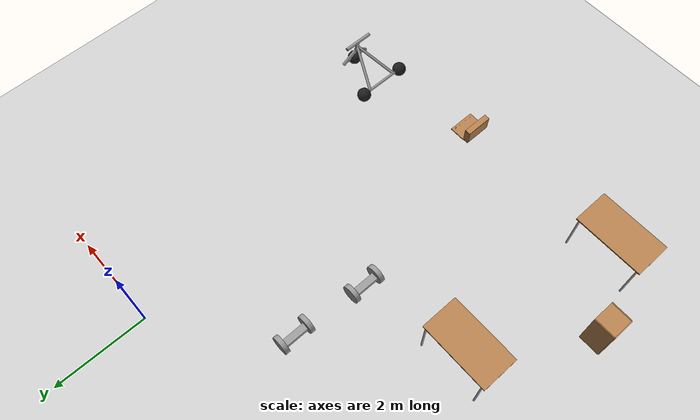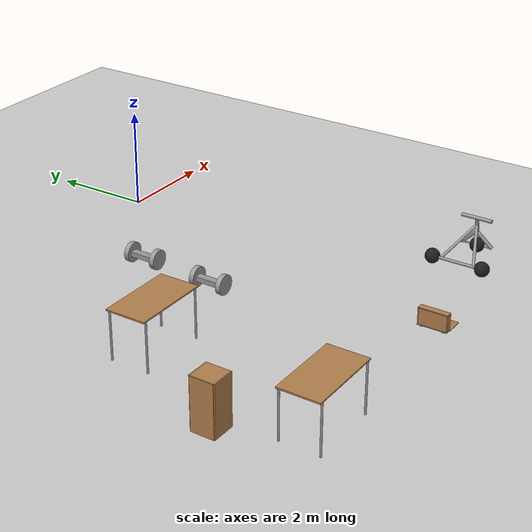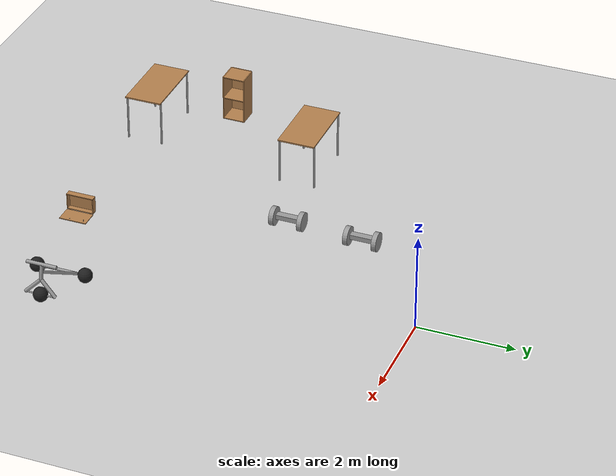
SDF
<sdf version="1.6">
 <world name="default">
  <model name="ground_plane">
   <static>1</static>
   <link name="link">
    <collision name="collision">
     <geometry><plane><normal>0 0 1</normal><size>100 100</size></plane></geometry>
     <surface><friction><ode><mu>100</mu><mu2>50</mu2></ode></friction></surface>
    </collision>
    <visual name="visual">
     <cast_shadows>0</cast_shadows>
     <geometry><plane><normal>0 0 1</normal><size>100 100</size></plane></geometry>
     <material>
      <script><uri>file://media/materials/scripts/gazebo.material</uri><name>Gazebo/Grey</name></script>
     </material>
    </visual>
   </link>
  </model>
  <model name="TwoWheeledRobot">
   <link name="link_0">
    <inertial>
     <mass>1</mass>
     <inertia>
      <ixx>0.166667</ixx>
      <ixy>0</ixy>
      <ixz>0</ixz>
      <iyy>0.166667</iyy>
      <iyz>0</iyz>
      <izz>0.166667</izz>
     </inertia>
     <pose>0 0 0.2 0 -0 0</pose>
    </inertial>
    <pose>-0.021667 0 0 0 -0 0</pose>
    <visual name="visual">
     <geometry><box><size>0.15 0.5 0.1</size></box></geometry>
     <material>
      <lighting>1</lighting>
      <script><uri>file://media/materials/scripts/gazebo.material</uri><name>Gazebo/Grey</name></script>
      <shader type="pixel"><normal_map>__default__</normal_map></shader>
      <ambient>0.3 0.3 0.3 1</ambient>
      <diffuse>0.7 0.7 0.7 1</diffuse>
      <specular>0.01 0.01 0.01 1</specular>
      <emissive>0 0 0 1</emissive>
     </material>
    </visual>
    <collision name="collision">
     <geometry><box><size>0.15 0.5 0.1</size></box></geometry>
     <surface>
      <friction>
       <ode><mu>1</mu><mu2>1</mu2><fdir1>0 0 0</fdir1><slip1>0</slip1><slip2>0</slip2></ode>
       <torsional>
        <coefficient>1</coefficient>
        <patch_radius>0</patch_radius>
        <surface_radius>0</surface_radius>
        <use_patch_radius>1</use_patch_radius>
        <ode><slip>0</slip></ode>
       </torsional>
      </friction>
      <bounce><restitution_coefficient>0</restitution_coefficient><threshold>1e+06</threshold></bounce>
      <contact>
       <collide_without_contact>0</collide_without_contact>
       <collide_without_contact_bitmask>1</collide_without_contact_bitmask>
       <collide_bitmask>1</collide_bitmask>
       <ode>
        <soft_cfm>0</soft_cfm>
        <soft_erp>0.2</soft_erp>
        <kp>1e+13</kp>
        <kd>1</kd>
        <max_vel>0.01</max_vel>
        <min_depth>0</min_depth>
       </ode>
       <bullet>
        <split_impulse>1</split_impulse>
        <split_impulse_penetration_threshold>-0.01</split_impulse_penetration_threshold>
        <soft_cfm>0</soft_cfm>
        <soft_erp>0.2</soft_erp>
        <kp>1e+13</kp>
        <kd>1</kd>
       </bullet>
      </contact>
     </surface>
    </collision>
   </link>
   <link name="link_1">
    <inertial>
     <mass>1</mass>
     <inertia><ixx>0.145833</ixx><ixy>0</ixy><ixz>0</ixz><iyy>0.145833</iyy><iyz>0</iyz><izz>0.125</izz></inertia>
    </inertial>
    <pose>0.010833 -0.300019 0 1.5707 -0 0</pose>
    <visual name="visual">
     <geometry><cylinder><radius>0.2</radius><length>0.1</length></cylinder></geometry>
     <material>
      <lighting>1</lighting>
      <script><uri>file://media/materials/scripts/gazebo.material</uri><name>Gazebo/Grey</name></script>
      <shader type="pixel"><normal_map>__default__</normal_map></shader>
      <ambient>0.3 0.3 0.3 1</ambient>
      <diffuse>0.7 0.7 0.7 1</diffuse>
      <specular>0.01 0.01 0.01 1</specular>
      <emissive>0 0 0 1</emissive>
     </material>
    </visual>
    <collision name="collision">
     <geometry><cylinder><radius>0.2</radius><length>0.1</length></cylinder></geometry>
     <surface>
      <friction>
       <ode><mu>1</mu><mu2>1</mu2><fdir1>0 0 0</fdir1><slip1>0</slip1><slip2>0</slip2></ode>
       <torsional>
        <coefficient>1</coefficient>
        <patch_radius>0</patch_radius>
        <surface_radius>0</surface_radius>
        <use_patch_radius>1</use_patch_radius>
        <ode><slip>0</slip></ode>
       </torsional>
      </friction>
      <bounce><restitution_coefficient>0</restitution_coefficient><threshold>1e+06</threshold></bounce>
      <contact>
       <collide_without_contact>0</collide_without_contact>
       <collide_without_contact_bitmask>1</collide_without_contact_bitmask>
       <collide_bitmask>1</collide_bitmask>
       <ode>
        <soft_cfm>0</soft_cfm>
        <soft_erp>0.2</soft_erp>
        <kp>1e+13</kp>
        <kd>1</kd>
        <max_vel>0.01</max_vel>
        <min_depth>0</min_depth>
       </ode>
       <bullet>
        <split_impulse>1</split_impulse>
        <split_impulse_penetration_threshold>-0.01</split_impulse_penetration_threshold>
        <soft_cfm>0</soft_cfm>
        <soft_erp>0.2</soft_erp>
        <kp>1e+13</kp>
        <kd>1</kd>
       </bullet>
      </contact>
     </surface>
    </collision>
   </link>
   <link name="link_1_clone">
    <inertial>
     <mass>1</mass>
     <inertia><ixx>0.145833</ixx><ixy>0</ixy><ixz>0</ixz><iyy>0.145833</iyy><iyz>0</iyz><izz>0.125</izz></inertia>
    </inertial>
    <pose>0.010833 0.300019 0 1.5707 -0 0</pose>
    <visual name="visual">
     <geometry><cylinder><radius>0.2</radius><length>0.1</length></cylinder></geometry>
     <material>
      <lighting>1</lighting>
      <script><uri>file://media/materials/scripts/gazebo.material</uri><name>Gazebo/Grey</name></script>
      <shader type="pixel"><normal_map>__default__</normal_map></shader>
      <ambient>0.3 0.3 0.3 1</ambient>
      <diffuse>0.7 0.7 0.7 1</diffuse>
      <specular>0.01 0.01 0.01 1</specular>
      <emissive>0 0 0 1</emissive>
     </material>
    </visual>
    <collision name="collision">
     <geometry><cylinder><radius>0.2</radius><length>0.1</length></cylinder></geometry>
     <surface>
      <friction>
       <ode><mu>1</mu><mu2>1</mu2><fdir1>0 0 0</fdir1><slip1>0</slip1><slip2>0</slip2></ode>
       <torsional>
        <coefficient>1</coefficient>
        <patch_radius>0</patch_radius>
        <surface_radius>0</surface_radius>
        <use_patch_radius>1</use_patch_radius>
        <ode><slip>0</slip></ode>
       </torsional>
      </friction>
      <bounce><restitution_coefficient>0</restitution_coefficient><threshold>1e+06</threshold></bounce>
      <contact>
       <collide_without_contact>0</collide_without_contact>
       <collide_without_contact_bitmask>1</collide_without_contact_bitmask>
       <collide_bitmask>1</collide_bitmask>
       <ode>
        <soft_cfm>0</soft_cfm>
        <soft_erp>0.2</soft_erp>
        <kp>1e+13</kp>
        <kd>1</kd>
        <max_vel>0.01</max_vel>
        <min_depth>0</min_depth>
       </ode>
       <bullet>
        <split_impulse>1</split_impulse>
        <split_impulse_penetration_threshold>-0.01</split_impulse_penetration_threshold>
        <soft_cfm>0</soft_cfm>
        <soft_erp>0.2</soft_erp>
        <kp>1e+13</kp>
        <kd>1</kd>
       </bullet>
      </contact>
     </surface>
    </collision>
   </link>
   <joint name="link_0_JOINT_0" type="revolute">
    <parent>link_0</parent>
    <child>link_1</child>
    <axis>
     <xyz>0 0 1</xyz>
     <use_parent_model_frame>0</use_parent_model_frame>
     <limit>
      <lower>-1.79769e+308</lower>
      <upper>1.79769e+308</upper>
      <effort>-1</effort>
      <velocity>-1</velocity>
     </limit>
     <dynamics>
      <spring_reference>0</spring_reference>
      <spring_stiffness>0</spring_stiffness>
      <damping>0</damping>
     </dynamics>
    </axis>
    <physics>
     <ode><limit><cfm>0</cfm><erp>0.2</erp></limit><suspension><cfm>0</cfm><erp>0.2</erp></suspension></ode>
    </physics>
   </joint>
   <joint name="link_0_JOINT_1" type="revolute">
    <parent>link_0</parent>
    <child>link_1_clone</child>
    <axis>
     <xyz>0 0 1</xyz>
     <use_parent_model_frame>0</use_parent_model_frame>
     <limit>
      <lower>-1.79769e+308</lower>
      <upper>1.79769e+308</upper>
      <effort>-1</effort>
      <velocity>-1</velocity>
     </limit>
     <dynamics>
      <spring_reference>0</spring_reference>
      <spring_stiffness>0</spring_stiffness>
      <damping>0</damping>
     </dynamics>
    </axis>
    <physics>
     <ode><limit><cfm>0</cfm><erp>0.2</erp></limit><suspension><cfm>0</cfm><erp>0.2</erp></suspension></ode>
    </physics>
   </joint>
   <static>0</static>
   <pose>-2.17333 -1.88061 0.2 0 -0 0</pose>
  </model>
  <model name="TwoWheeledRobot_0">
   <link name="link_0">
    <inertial>
     <mass>1</mass>
     <inertia>
      <ixx>0.166667</ixx>
      <ixy>0</ixy>
      <ixz>0</ixz>
      <iyy>0.166667</iyy>
      <iyz>0</iyz>
      <izz>0.166667</izz>
     </inertia>
     <pose>0 0 0.2 0 -0 0</pose>
    </inertial>
    <pose>-0.021667 0 0 0 -0 0</pose>
    <visual name="visual">
     <geometry><box><size>0.15 0.5 0.1</size></box></geometry>
     <material>
      <lighting>1</lighting>
      <script><uri>file://media/materials/scripts/gazebo.material</uri><name>Gazebo/Grey</name></script>
      <shader type="pixel"><normal_map>__default__</normal_map></shader>
      <ambient>0.3 0.3 0.3 1</ambient>
      <diffuse>0.7 0.7 0.7 1</diffuse>
      <specular>0.01 0.01 0.01 1</specular>
      <emissive>0 0 0 1</emissive>
     </material>
    </visual>
    <collision name="collision">
     <geometry><box><size>0.15 0.5 0.1</size></box></geometry>
     <surface>
      <friction>
       <ode><mu>1</mu><mu2>1</mu2><fdir1>0 0 0</fdir1><slip1>0</slip1><slip2>0</slip2></ode>
       <torsional>
        <coefficient>1</coefficient>
        <patch_radius>0</patch_radius>
        <surface_radius>0</surface_radius>
        <use_patch_radius>1</use_patch_radius>
        <ode><slip>0</slip></ode>
       </torsional>
      </friction>
      <bounce><restitution_coefficient>0</restitution_coefficient><threshold>1e+06</threshold></bounce>
      <contact>
       <collide_without_contact>0</collide_without_contact>
       <collide_without_contact_bitmask>1</collide_without_contact_bitmask>
       <collide_bitmask>1</collide_bitmask>
       <ode>
        <soft_cfm>0</soft_cfm>
        <soft_erp>0.2</soft_erp>
        <kp>1e+13</kp>
        <kd>1</kd>
        <max_vel>0.01</max_vel>
        <min_depth>0</min_depth>
       </ode>
       <bullet>
        <split_impulse>1</split_impulse>
        <split_impulse_penetration_threshold>-0.01</split_impulse_penetration_threshold>
        <soft_cfm>0</soft_cfm>
        <soft_erp>0.2</soft_erp>
        <kp>1e+13</kp>
        <kd>1</kd>
       </bullet>
      </contact>
     </surface>
    </collision>
   </link>
   <link name="link_1">
    <inertial>
     <mass>1</mass>
     <inertia><ixx>0.145833</ixx><ixy>0</ixy><ixz>0</ixz><iyy>0.145833</iyy><iyz>0</iyz><izz>0.125</izz></inertia>
    </inertial>
    <pose>0.010833 -0.300019 0 1.5707 -0 0</pose>
    <visual name="visual">
     <geometry><cylinder><radius>0.2</radius><length>0.1</length></cylinder></geometry>
     <material>
      <lighting>1</lighting>
      <script><uri>file://media/materials/scripts/gazebo.material</uri><name>Gazebo/Grey</name></script>
      <shader type="pixel"><normal_map>__default__</normal_map></shader>
      <ambient>0.3 0.3 0.3 1</ambient>
      <diffuse>0.7 0.7 0.7 1</diffuse>
      <specular>0.01 0.01 0.01 1</specular>
      <emissive>0 0 0 1</emissive>
     </material>
    </visual>
    <collision name="collision">
     <geometry><cylinder><radius>0.2</radius><length>0.1</length></cylinder></geometry>
     <surface>
      <friction>
       <ode><mu>1</mu><mu2>1</mu2><fdir1>0 0 0</fdir1><slip1>0</slip1><slip2>0</slip2></ode>
       <torsional>
        <coefficient>1</coefficient>
        <patch_radius>0</patch_radius>
        <surface_radius>0</surface_radius>
        <use_patch_radius>1</use_patch_radius>
        <ode><slip>0</slip></ode>
       </torsional>
      </friction>
      <bounce><restitution_coefficient>0</restitution_coefficient><threshold>1e+06</threshold></bounce>
      <contact>
       <collide_without_contact>0</collide_without_contact>
       <collide_without_contact_bitmask>1</collide_without_contact_bitmask>
       <collide_bitmask>1</collide_bitmask>
       <ode>
        <soft_cfm>0</soft_cfm>
        <soft_erp>0.2</soft_erp>
        <kp>1e+13</kp>
        <kd>1</kd>
        <max_vel>0.01</max_vel>
        <min_depth>0</min_depth>
       </ode>
       <bullet>
        <split_impulse>1</split_impulse>
        <split_impulse_penetration_threshold>-0.01</split_impulse_penetration_threshold>
        <soft_cfm>0</soft_cfm>
        <soft_erp>0.2</soft_erp>
        <kp>1e+13</kp>
        <kd>1</kd>
       </bullet>
      </contact>
     </surface>
    </collision>
   </link>
   <link name="link_1_clone">
    <inertial>
     <mass>1</mass>
     <inertia><ixx>0.145833</ixx><ixy>0</ixy><ixz>0</ixz><iyy>0.145833</iyy><iyz>0</iyz><izz>0.125</izz></inertia>
    </inertial>
    <pose>0.010833 0.300019 0 1.5707 -0 0</pose>
    <visual name="visual">
     <geometry><cylinder><radius>0.2</radius><length>0.1</length></cylinder></geometry>
     <material>
      <lighting>1</lighting>
      <script><uri>file://media/materials/scripts/gazebo.material</uri><name>Gazebo/Grey</name></script>
      <shader type="pixel"><normal_map>__default__</normal_map></shader>
      <ambient>0.3 0.3 0.3 1</ambient>
      <diffuse>0.7 0.7 0.7 1</diffuse>
      <specular>0.01 0.01 0.01 1</specular>
      <emissive>0 0 0 1</emissive>
     </material>
    </visual>
    <collision name="collision">
     <geometry><cylinder><radius>0.2</radius><length>0.1</length></cylinder></geometry>
     <surface>
      <friction>
       <ode><mu>1</mu><mu2>1</mu2><fdir1>0 0 0</fdir1><slip1>0</slip1><slip2>0</slip2></ode>
       <torsional>
        <coefficient>1</coefficient>
        <patch_radius>0</patch_radius>
        <surface_radius>0</surface_radius>
        <use_patch_radius>1</use_patch_radius>
        <ode><slip>0</slip></ode>
       </torsional>
      </friction>
      <bounce><restitution_coefficient>0</restitution_coefficient><threshold>1e+06</threshold></bounce>
      <contact>
       <collide_without_contact>0</collide_without_contact>
       <collide_without_contact_bitmask>1</collide_without_contact_bitmask>
       <collide_bitmask>1</collide_bitmask>
       <ode>
        <soft_cfm>0</soft_cfm>
        <soft_erp>0.2</soft_erp>
        <kp>1e+13</kp>
        <kd>1</kd>
        <max_vel>0.01</max_vel>
        <min_depth>0</min_depth>
       </ode>
       <bullet>
        <split_impulse>1</split_impulse>
        <split_impulse_penetration_threshold>-0.01</split_impulse_penetration_threshold>
        <soft_cfm>0</soft_cfm>
        <soft_erp>0.2</soft_erp>
        <kp>1e+13</kp>
        <kd>1</kd>
       </bullet>
      </contact>
     </surface>
    </collision>
   </link>
   <joint name="link_0_JOINT_0" type="revolute">
    <parent>link_0</parent>
    <child>link_1</child>
    <axis>
     <xyz>0 0 1</xyz>
     <use_parent_model_frame>0</use_parent_model_frame>
     <limit>
      <lower>-1.79769e+308</lower>
      <upper>1.79769e+308</upper>
      <effort>-1</effort>
      <velocity>-1</velocity>
     </limit>
     <dynamics>
      <spring_reference>0</spring_reference>
      <spring_stiffness>0</spring_stiffness>
      <damping>0</damping>
     </dynamics>
    </axis>
    <physics>
     <ode><limit><cfm>0</cfm><erp>0.2</erp></limit><suspension><cfm>0</cfm><erp>0.2</erp></suspension></ode>
    </physics>
   </joint>
   <joint name="link_0_JOINT_1" type="revolute">
    <parent>link_0</parent>
    <child>link_1_clone</child>
    <axis>
     <xyz>0 0 1</xyz>
     <use_parent_model_frame>0</use_parent_model_frame>
     <limit>
      <lower>-1.79769e+308</lower>
      <upper>1.79769e+308</upper>
      <effort>-1</effort>
      <velocity>-1</velocity>
     </limit>
     <dynamics>
      <spring_reference>0</spring_reference>
      <spring_stiffness>0</spring_stiffness>
      <damping>0</damping>
     </dynamics>
    </axis>
    <physics>
     <ode><limit><cfm>0</cfm><erp>0.2</erp></limit><suspension><cfm>0</cfm><erp>0.2</erp></suspension></ode>
    </physics>
   </joint>
   <static>0</static>
   <pose>-2.29318 -3.50931 0.2 0 -0 0</pose>
  </model>
  <model name="cabinet">
   <static>1</static>
   <link name="cabinet_bottom_plate">
    <inertial>
     <pose>0 0 -1 0 -0 0</pose>
     <inertia><ixx>2.05</ixx><ixy>0</ixy><ixz>0</ixz><iyy>2.05</iyy><iyz>0</iyz><izz>2.05</izz></inertia>
     <mass>25</mass>
    </inertial>
    <collision name="cabinet_bottom_plate_geom">
     <pose>0 0 0.01 0 -0 0</pose>
     <geometry><box><size>0.45 0.45 0.02</size></box></geometry>
    </collision>
    <visual name="cabinet_bottom_plate_geom_visual">
     <pose>0 0 0.01 0 -0 0</pose>
     <geometry><box><size>0.45 0.45 0.02</size></box></geometry>
     <material>
      <script><uri>file://media/materials/scripts/gazebo.material</uri><name>Gazebo/Wood</name></script>
     </material>
    </visual>
    <collision name="cabinet_bottom_plate_geom_cabinet_back_plate">
     <pose>0.235 0 0.51 0 -0 0</pose>
     <geometry><box><size>0.02 0.45 1.02</size></box></geometry>
    </collision>
    <visual name="cabinet_bottom_plate_geom_cabinet_back_plate_visual">
     <pose>0.235 0 0.51 0 -0 0</pose>
     <geometry><box><size>0.02 0.45 1.02</size></box></geometry>
     <material>
      <script><uri>file://media/materials/scripts/gazebo.material</uri><name>Gazebo/Wood</name></script>
     </material>
    </visual>
    <collision name="cabinet_bottom_plate_geom_cabinet_left_plate">
     <pose>0 0.235 0.51 0 -0 0</pose>
     <geometry><box><size>0.45 0.02 1.02</size></box></geometry>
    </collision>
    <visual name="cabinet_bottom_plate_geom_cabinet_left_plate_visual">
     <pose>0 0.235 0.51 0 -0 0</pose>
     <geometry><box><size>0.45 0.02 1.02</size></box></geometry>
     <material>
      <script><uri>file://media/materials/scripts/gazebo.material</uri><name>Gazebo/Wood</name></script>
     </material>
    </visual>
    <collision name="cabinet_bottom_plate_geom_cabinet_middle_plate">
     <pose>0 0 0.51 0 -0 0</pose>
     <geometry><box><size>0.45 0.45 0.02</size></box></geometry>
    </collision>
    <visual name="cabinet_bottom_plate_geom_cabinet_middle_plate_visual">
     <pose>0 0 0.51 0 -0 0</pose>
     <geometry><box><size>0.45 0.45 0.02</size></box></geometry>
     <material>
      <script><uri>file://media/materials/scripts/gazebo.material</uri><name>Gazebo/Wood</name></script>
     </material>
    </visual>
    <collision name="cabinet_bottom_plate_geom_cabinet_right_plate">
     <pose>0 -0.235 0.51 0 -0 0</pose>
     <geometry><box><size>0.45 0.02 1.02</size></box></geometry>
    </collision>
    <visual name="cabinet_bottom_plate_geom_cabinet_right_plate_visual">
     <pose>0 -0.235 0.51 0 -0 0</pose>
     <geometry><box><size>0.45 0.02 1.02</size></box></geometry>
     <material>
      <script><uri>file://media/materials/scripts/gazebo.material</uri><name>Gazebo/Wood</name></script>
     </material>
    </visual>
    <collision name="cabinet_bottom_plate_geom_cabinet_top_plate">
     <pose>0 0 1.01 0 -0 0</pose>
     <geometry><box><size>0.45 0.45 0.02</size></box></geometry>
    </collision>
    <visual name="cabinet_bottom_plate_geom_cabinet_top_plate_visual">
     <pose>0 0 1.01 0 -0 0</pose>
     <geometry><box><size>0.45 0.45 0.02</size></box></geometry>
     <material>
      <script><uri>file://media/materials/scripts/gazebo.material</uri><name>Gazebo/Wood</name></script>
     </material>
    </visual>
   </link>
   <pose>-5.90656 -6.11318 0 0 -0 3.1347</pose>
  </model>
  <model name="table">
   <static>1</static>
   <link name="link">
    <collision name="surface">
     <pose>0 0 1 0 -0 0</pose>
     <geometry><box><size>1.5 0.8 0.03</size></box></geometry>
     <surface><friction><ode><mu>0.6</mu><mu2>0.6</mu2></ode></friction></surface>
    </collision>
    <visual name="visual1">
     <pose>0 0 1 0 -0 0</pose>
     <geometry><box><size>1.5 0.8 0.03</size></box></geometry>
     <material>
      <script><uri>file://media/materials/scripts/gazebo.material</uri><name>Gazebo/Wood</name></script>
     </material>
    </visual>
    <collision name="front_left_leg">
     <pose>0.68 0.38 0.5 0 -0 0</pose>
     <geometry><cylinder><radius>0.02</radius><length>1</length></cylinder></geometry>
    </collision>
    <visual name="front_left_leg">
     <pose>0.68 0.38 0.5 0 -0 0</pose>
     <geometry><cylinder><radius>0.02</radius><length>1</length></cylinder></geometry>
     <material>
      <script><uri>file://media/materials/scripts/gazebo.material</uri><name>Gazebo/Grey</name></script>
     </material>
    </visual>
    <collision name="front_right_leg">
     <pose>0.68 -0.38 0.5 0 -0 0</pose>
     <geometry><cylinder><radius>0.02</radius><length>1</length></cylinder></geometry>
    </collision>
    <visual name="front_right_leg">
     <pose>0.68 -0.38 0.5 0 -0 0</pose>
     <geometry><cylinder><radius>0.02</radius><length>1</length></cylinder></geometry>
     <material>
      <script><uri>file://media/materials/scripts/gazebo.material</uri><name>Gazebo/Grey</name></script>
     </material>
    </visual>
    <collision name="back_right_leg">
     <pose>-0.68 -0.38 0.5 0 -0 0</pose>
     <geometry><cylinder><radius>0.02</radius><length>1</length></cylinder></geometry>
    </collision>
    <visual name="back_right_leg">
     <pose>-0.68 -0.38 0.5 0 -0 0</pose>
     <geometry><cylinder><radius>0.02</radius><length>1</length></cylinder></geometry>
     <material>
      <script><uri>file://media/materials/scripts/gazebo.material</uri><name>Gazebo/Grey</name></script>
     </material>
    </visual>
    <collision name="back_left_leg">
     <pose>-0.68 0.38 0.5 0 -0 0</pose>
     <geometry><cylinder><radius>0.02</radius><length>1</length></cylinder></geometry>
    </collision>
    <visual name="back_left_leg">
     <pose>-0.68 0.38 0.5 0 -0 0</pose>
     <geometry><cylinder><radius>0.02</radius><length>1</length></cylinder></geometry>
     <material>
      <script><uri>file://media/materials/scripts/gazebo.material</uri><name>Gazebo/Grey</name></script>
     </material>
    </visual>
   </link>
   <pose>-4.51992 -3.93494 0 0 -0 0</pose>
  </model>
  <model name="table_0">
   <static>1</static>
   <link name="link">
    <collision name="surface">
     <pose>0 0 1 0 -0 0</pose>
     <geometry><box><size>1.5 0.8 0.03</size></box></geometry>
     <surface><friction><ode><mu>0.6</mu><mu2>0.6</mu2></ode></friction></surface>
    </collision>
    <visual name="visual1">
     <pose>0 0 1 0 -0 0</pose>
     <geometry><box><size>1.5 0.8 0.03</size></box></geometry>
     <material>
      <script><uri>file://media/materials/scripts/gazebo.material</uri><name>Gazebo/Wood</name></script>
     </material>
    </visual>
    <collision name="front_left_leg">
     <pose>0.68 0.38 0.5 0 -0 0</pose>
     <geometry><cylinder><radius>0.02</radius><length>1</length></cylinder></geometry>
    </collision>
    <visual name="front_left_leg">
     <pose>0.68 0.38 0.5 0 -0 0</pose>
     <geometry><cylinder><radius>0.02</radius><length>1</length></cylinder></geometry>
     <material>
      <script><uri>file://media/materials/scripts/gazebo.material</uri><name>Gazebo/Grey</name></script>
     </material>
    </visual>
    <collision name="front_right_leg">
     <pose>0.68 -0.38 0.5 0 -0 0</pose>
     <geometry><cylinder><radius>0.02</radius><length>1</length></cylinder></geometry>
    </collision>
    <visual name="front_right_leg">
     <pose>0.68 -0.38 0.5 0 -0 0</pose>
     <geometry><cylinder><radius>0.02</radius><length>1</length></cylinder></geometry>
     <material>
      <script><uri>file://media/materials/scripts/gazebo.material</uri><name>Gazebo/Grey</name></script>
     </material>
    </visual>
    <collision name="back_right_leg">
     <pose>-0.68 -0.38 0.5 0 -0 0</pose>
     <geometry><cylinder><radius>0.02</radius><length>1</length></cylinder></geometry>
    </collision>
    <visual name="back_right_leg">
     <pose>-0.68 -0.38 0.5 0 -0 0</pose>
     <geometry><cylinder><radius>0.02</radius><length>1</length></cylinder></geometry>
     <material>
      <script><uri>file://media/materials/scripts/gazebo.material</uri><name>Gazebo/Grey</name></script>
     </material>
    </visual>
    <collision name="back_left_leg">
     <pose>-0.68 0.38 0.5 0 -0 0</pose>
     <geometry><cylinder><radius>0.02</radius><length>1</length></cylinder></geometry>
    </collision>
    <visual name="back_left_leg">
     <pose>-0.68 0.38 0.5 0 -0 0</pose>
     <geometry><cylinder><radius>0.02</radius><length>1</length></cylinder></geometry>
     <material>
      <script><uri>file://media/materials/scripts/gazebo.material</uri><name>Gazebo/Grey</name></script>
     </material>
    </visual>
   </link>
   <pose>-4.92469 -7.5358 0 0 -0 0</pose>
  </model>
  <model name="trisphere_cycle">
   <link name="frame">
    <pose>-0.408559 0 0.385023 0 -0.522021 0</pose>
    <inertial>
     <mass>10</mass>
     <inertia><ixx>0.228</ixx><iyy>0.743521</iyy><izz>0.965521</izz><ixy>0</ixy><ixz>0</ixz><iyz>0</iyz></inertia>
    </inertial>
    <collision name="axle_collision">
     <pose>-0.471335 0 0 1.5708 -0 0</pose>
     <geometry><cylinder><length>1.03923</length><radius>0.03</radius></cylinder></geometry>
    </collision>
    <visual name="axle_visual">
     <pose>-0.471335 0 0 1.5708 -0 0</pose>
     <geometry><cylinder><length>1.03923</length><radius>0.03</radius></cylinder></geometry>
     <material>
      <script><uri>file://media/materials/scripts/gazebo.material</uri><name>Gazebo/Grey</name></script>
     </material>
    </visual>
    <collision name="frame_left_collision">
     <pose>0 0.171552 0 -2.79253 1.57079 3.14159</pose>
     <geometry><cylinder><length>1.00317</length><radius>0.03</radius></cylinder></geometry>
    </collision>
    <visual name="frame_left_visual">
     <pose>0 0.171552 0 -2.79253 1.57079 3.14159</pose>
     <geometry><cylinder><length>1.00317</length><radius>0.03</radius></cylinder></geometry>
     <material>
      <script><uri>file://media/materials/scripts/gazebo.material</uri><name>Gazebo/Grey</name></script>
     </material>
    </visual>
    <collision name="frame_right_collision">
     <pose>0 -0.171552 0 2.79253 1.57079 -3.14159</pose>
     <geometry><cylinder><length>1.00317</length><radius>0.03</radius></cylinder></geometry>
    </collision>
    <visual name="frame_right_visual">
     <pose>0 -0.171552 0 2.79253 1.57079 -3.14159</pose>
     <geometry><cylinder><length>1.00317</length><radius>0.03</radius></cylinder></geometry>
     <material>
      <script><uri>file://media/materials/scripts/gazebo.material</uri><name>Gazebo/Grey</name></script>
     </material>
    </visual>
   </link>
   <link name="fork">
    <pose>0.041441 0 0.385023 0 -0.174533 0</pose>
    <inertial>
     <mass>3</mass>
     <inertia>
      <ixx>0.158203</ixx>
      <iyy>0.0583594</iyy>
      <izz>0.102656</izz>
      <ixy>0</ixy>
      <ixz>0</ixz>
      <iyz>0</iyz>
     </inertia>
    </inertial>
    <collision name="handlebars_collision">
     <pose>0 0 0.397748 1.5708 -0 0</pose>
     <geometry><cylinder><length>0.636396</length><radius>0.0375</radius></cylinder></geometry>
    </collision>
    <visual name="handlebars_visual">
     <pose>0 0 0.397748 1.5708 -0 0</pose>
     <geometry><cylinder><length>0.636396</length><radius>0.0375</radius></cylinder></geometry>
     <material>
      <script><uri>file://media/materials/scripts/gazebo.material</uri><name>Gazebo/Grey</name></script>
     </material>
    </visual>
    <collision name="headtube_collision">
     <pose>0 0 0.238649 0 -0 0</pose>
     <geometry><cylinder><length>0.318198</length><radius>0.0375</radius></cylinder></geometry>
    </collision>
    <visual name="headtube_visual">
     <pose>0 0 0.238649 0 -0 0</pose>
     <geometry><cylinder><length>0.318198</length><radius>0.0375</radius></cylinder></geometry>
     <material>
      <script><uri>file://media/materials/scripts/gazebo.material</uri><name>Gazebo/Grey</name></script>
     </material>
    </visual>
    <collision name="spindle_collision">
     <pose>0 0 -0.238649 1.5708 -0 0</pose>
     <geometry><cylinder><length>0.636396</length><radius>0.015</radius></cylinder></geometry>
    </collision>
    <visual name="spindle_visual">
     <pose>0 0 -0.238649 1.5708 -0 0</pose>
     <geometry><cylinder><length>0.636396</length><radius>0.015</radius></cylinder></geometry>
     <material>
      <script><uri>file://media/materials/scripts/gazebo.material</uri><name>Gazebo/Grey</name></script>
     </material>
    </visual>
    <collision name="fork_left_collision">
     <pose>0 0.159099 -0.07955 0.785398 -0 0</pose>
     <geometry><cylinder><length>0.45</length><radius>0.0375</radius></cylinder></geometry>
    </collision>
    <visual name="fork_left_visual">
     <pose>0 0.159099 -0.07955 0.785398 -0 0</pose>
     <geometry><cylinder><length>0.45</length><radius>0.0375</radius></cylinder></geometry>
     <material>
      <script><uri>file://media/materials/scripts/gazebo.material</uri><name>Gazebo/Grey</name></script>
     </material>
    </visual>
    <collision name="fork_right_collision">
     <pose>0 -0.159099 -0.07955 -0.785398 0 0</pose>
     <geometry><cylinder><length>0.45</length><radius>0.0375</radius></cylinder></geometry>
    </collision>
    <visual name="fork_right_visual">
     <pose>0 -0.159099 -0.07955 -0.785398 0 0</pose>
     <geometry><cylinder><length>0.45</length><radius>0.0375</radius></cylinder></geometry>
     <material>
      <script><uri>file://media/materials/scripts/gazebo.material</uri><name>Gazebo/Grey</name></script>
     </material>
    </visual>
   </link>
   <link name="wheel_front">
    <pose>0.082882 0 0.15 0 -0 0</pose>
    <inertial>
     <mass>0.5</mass>
     <inertia><ixx>0.0045</ixx><iyy>0.0045</iyy><izz>0.0045</izz><ixy>0</ixy><ixz>0</ixz><iyz>0</iyz></inertia>
    </inertial>
    <collision name="collision">
     <geometry><sphere><radius>0.15</radius></sphere></geometry>
     <surface><contact><ode><kp>1e+08</kp><kd>1</kd><min_depth>0.0005</min_depth></ode></contact></surface>
    </collision>
    <visual name="visual">
     <geometry><sphere><radius>0.15</radius></sphere></geometry>
     <material>
      <script><uri>file://media/materials/scripts/gazebo.material</uri><name>Gazebo/Black</name></script>
     </material>
    </visual>
   </link>
   <joint name="wheel_front_steer" type="revolute">
    <parent>frame</parent>
    <child>fork</child>
    <axis>
     <xyz>0 0 1</xyz>
     <limit><lower>-0.959931</lower><upper>0.959931</upper></limit>
     <use_parent_model_frame>0</use_parent_model_frame>
     <dynamics><spring_reference>0</spring_reference><spring_stiffness>0</spring_stiffness></dynamics>
    </axis>
   </joint>
   <joint name="wheel_front_spin" type="revolute">
    <parent>fork</parent>
    <child>wheel_front</child>
    <axis>
     <xyz>0 1 0</xyz>
     <use_parent_model_frame>0</use_parent_model_frame>
     <limit><lower>-1e+16</lower><upper>1e+16</upper></limit>
     <dynamics><spring_reference>0</spring_reference><spring_stiffness>0</spring_stiffness></dynamics>
    </axis>
   </joint>
   <link name="wheel_rear_left">
    <pose>-0.817118 0.519615 0.15 0 -0 0</pose>
    <inertial>
     <mass>0.5</mass>
     <inertia><ixx>0.0045</ixx><iyy>0.0045</iyy><izz>0.0045</izz><ixy>0</ixy><ixz>0</ixz><iyz>0</iyz></inertia>
    </inertial>
    <collision name="collision">
     <geometry><sphere><radius>0.15</radius></sphere></geometry>
     <surface><contact><ode><kp>1e+08</kp><kd>1</kd><min_depth>0.0005</min_depth></ode></contact></surface>
    </collision>
    <visual name="visual">
     <geometry><sphere><radius>0.15</radius></sphere></geometry>
     <material>
      <script><uri>file://media/materials/scripts/gazebo.material</uri><name>Gazebo/Black</name></script>
     </material>
    </visual>
   </link>
   <joint name="wheel_rear_left_spin" type="revolute">
    <parent>frame</parent>
    <child>wheel_rear_left</child>
    <axis>
     <xyz>0 1 0</xyz>
     <use_parent_model_frame>0</use_parent_model_frame>
     <limit><lower>-1e+16</lower><upper>1e+16</upper></limit>
     <dynamics><spring_reference>0</spring_reference><spring_stiffness>0</spring_stiffness></dynamics>
    </axis>
   </joint>
   <link name="wheel_rear_right">
    <pose>-0.817118 -0.519615 0.15 0 -0 0</pose>
    <inertial>
     <mass>0.5</mass>
     <inertia><ixx>0.0045</ixx><iyy>0.0045</iyy><izz>0.0045</izz><ixy>0</ixy><ixz>0</ixz><iyz>0</iyz></inertia>
    </inertial>
    <collision name="collision">
     <geometry><sphere><radius>0.15</radius></sphere></geometry>
     <surface><contact><ode><kp>1e+08</kp><kd>1</kd><min_depth>0.0005</min_depth></ode></contact></surface>
    </collision>
    <visual name="visual">
     <geometry><sphere><radius>0.15</radius></sphere></geometry>
     <material>
      <script><uri>file://media/materials/scripts/gazebo.material</uri><name>Gazebo/Black</name></script>
     </material>
    </visual>
   </link>
   <joint name="wheel_rear_right_spin" type="revolute">
    <parent>frame</parent>
    <child>wheel_rear_right</child>
    <axis>
     <xyz>0 1 0</xyz>
     <use_parent_model_frame>0</use_parent_model_frame>
     <limit><lower>-1e+16</lower><upper>1e+16</upper></limit>
     <dynamics><spring_reference>0</spring_reference><spring_stiffness>0</spring_stiffness></dynamics>
    </axis>
   </joint>
   <pose>1.80152 -6.96411 -0 0 -0 0</pose>
  </model>
  <model name="wooden_case_metal_peg">
   <link name="wooden_case::base">
    <pose>0 0 0.024 0 -0 0</pose>
    <inertial>
     <pose>-0.022184 0 0.171592 0 -0 0</pose>
     <mass>3.96264</mass>
     <inertia>
      <ixx>0.213536</ixx>
      <ixy>0</ixy>
      <ixz>0.000779377</ixz>
      <iyy>0.0708943</iyy>
      <iyz>0</iyz>
      <izz>0.154604</izz>
     </inertia>
    </inertial>
    <collision name="collision_back">
     <pose>-0.053975 0 0.1778 0 -0 0</pose>
     <geometry><box><size>0.01905 0.5461 0.3175</size></box></geometry>
     <surface>
      <contact>
       <poissons_ratio>0.347</poissons_ratio>
       <elastic_modulus>8.8e+09</elastic_modulus>
       <ode><kp>100000</kp><kd>100</kd><max_vel>100</max_vel><min_depth>0.001</min_depth></ode>
      </contact>
      <friction>
       <torsional>
        <coefficient>1</coefficient>
        <use_patch_radius>0</use_patch_radius>
        <surface_radius>0.01</surface_radius>
       </torsional>
      </friction>
     </surface>
    </collision>
    <visual name="visual_back">
     <pose>-0.053975 0 0.1778 0 -0 0</pose>
     <geometry><box><size>0.01905 0.5461 0.3175</size></box></geometry>
     <material>
      <script><uri>file://media/materials/scripts/gazebo.material</uri><name>Gazebo/Wood</name></script>
     </material>
    </visual>
    <collision name="collision_bottom">
     <pose>0 0 0.009525 0 -0 0</pose>
     <geometry><box><size>0.127 0.5842 0.01905</size></box></geometry>
     <surface>
      <contact>
       <poissons_ratio>0.347</poissons_ratio>
       <elastic_modulus>8.8e+09</elastic_modulus>
       <ode><kp>100000</kp><kd>100</kd><max_vel>100</max_vel><min_depth>0.001</min_depth></ode>
      </contact>
      <friction>
       <torsional>
        <coefficient>1</coefficient>
        <use_patch_radius>0</use_patch_radius>
        <surface_radius>0.01</surface_radius>
       </torsional>
      </friction>
     </surface>
    </collision>
    <visual name="visual_bottom">
     <pose>0 0 0.009525 0 -0 0</pose>
     <geometry><box><size>0.127 0.5842 0.01905</size></box></geometry>
     <material>
      <script><uri>file://media/materials/scripts/gazebo.material</uri><name>Gazebo/Wood</name></script>
     </material>
    </visual>
    <collision name="collision_top">
     <pose>0 0 0.346075 0 -0 0</pose>
     <geometry><box><size>0.127 0.5842 0.01905</size></box></geometry>
     <surface>
      <contact>
       <poissons_ratio>0.347</poissons_ratio>
       <elastic_modulus>8.8e+09</elastic_modulus>
       <ode><kp>100000</kp><kd>100</kd><max_vel>100</max_vel><min_depth>0.001</min_depth></ode>
      </contact>
      <friction>
       <torsional>
        <coefficient>1</coefficient>
        <use_patch_radius>0</use_patch_radius>
        <surface_radius>0.01</surface_radius>
       </torsional>
      </friction>
     </surface>
    </collision>
    <visual name="visual_top">
     <pose>0 0 0.346075 0 -0 0</pose>
     <geometry><box><size>0.127 0.5842 0.01905</size></box></geometry>
     <material>
      <script><uri>file://media/materials/scripts/gazebo.material</uri><name>Gazebo/Wood</name></script>
     </material>
    </visual>
    <collision name="collision_left">
     <pose>0 -0.282575 0.1778 0 -0 0</pose>
     <geometry><box><size>0.127 0.01905 0.3175</size></box></geometry>
     <surface>
      <contact>
       <poissons_ratio>0.347</poissons_ratio>
       <elastic_modulus>8.8e+09</elastic_modulus>
       <ode><kp>100000</kp><kd>100</kd><max_vel>100</max_vel><min_depth>0.001</min_depth></ode>
      </contact>
      <friction>
       <torsional>
        <coefficient>1</coefficient>
        <use_patch_radius>0</use_patch_radius>
        <surface_radius>0.01</surface_radius>
       </torsional>
      </friction>
     </surface>
    </collision>
    <visual name="visual_left">
     <pose>0 -0.282575 0.1778 0 -0 0</pose>
     <geometry><box><size>0.127 0.01905 0.3175</size></box></geometry>
     <material>
      <script><uri>file://media/materials/scripts/gazebo.material</uri><name>Gazebo/Wood</name></script>
     </material>
    </visual>
    <collision name="collision_right">
     <pose>0 0.282575 0.1778 0 -0 0</pose>
     <geometry><box><size>0.127 0.01905 0.3175</size></box></geometry>
     <surface>
      <contact>
       <poissons_ratio>0.347</poissons_ratio>
       <elastic_modulus>8.8e+09</elastic_modulus>
       <ode><kp>100000</kp><kd>100</kd><max_vel>100</max_vel><min_depth>0.001</min_depth></ode>
      </contact>
      <friction>
       <torsional>
        <coefficient>1</coefficient>
        <use_patch_radius>0</use_patch_radius>
        <surface_radius>0.01</surface_radius>
       </torsional>
      </friction>
     </surface>
    </collision>
    <visual name="visual_right">
     <pose>0 0.282575 0.1778 0 -0 0</pose>
     <geometry><box><size>0.127 0.01905 0.3175</size></box></geometry>
     <material>
      <script><uri>file://media/materials/scripts/gazebo.material</uri><name>Gazebo/Wood</name></script>
     </material>
    </visual>
    <collision name="collision_block_left">
     <pose>0.0095 -0.2151 -0.012 0 -0 0</pose>
     <geometry><box><size>0.108 0.05 0.024</size></box></geometry>
     <surface>
      <contact>
       <poissons_ratio>0.347</poissons_ratio>
       <elastic_modulus>8.8e+09</elastic_modulus>
       <ode><kp>100000</kp><kd>100</kd><max_vel>100</max_vel><min_depth>0.001</min_depth></ode>
      </contact>
      <friction>
       <torsional>
        <coefficient>1</coefficient>
        <use_patch_radius>0</use_patch_radius>
        <surface_radius>0.01</surface_radius>
       </torsional>
      </friction>
     </surface>
    </collision>
    <visual name="visual_block_left">
     <pose>0.0095 -0.2151 -0.012 0 -0 0</pose>
     <geometry><box><size>0.108 0.05 0.024</size></box></geometry>
     <material>
      <script><uri>file://media/materials/scripts/gazebo.material</uri><name>Gazebo/Wood</name></script>
     </material>
    </visual>
    <collision name="collision_block_right">
     <pose>0.0095 0.2151 -0.012 0 -0 0</pose>
     <geometry><box><size>0.108 0.05 0.024</size></box></geometry>
     <surface>
      <contact>
       <poissons_ratio>0.347</poissons_ratio>
       <elastic_modulus>8.8e+09</elastic_modulus>
       <ode><kp>100000</kp><kd>100</kd><max_vel>100</max_vel><min_depth>0.001</min_depth></ode>
      </contact>
      <friction>
       <torsional>
        <coefficient>1</coefficient>
        <use_patch_radius>0</use_patch_radius>
        <surface_radius>0.01</surface_radius>
       </torsional>
      </friction>
     </surface>
    </collision>
    <visual name="visual_block_right">
     <pose>0.0095 0.2151 -0.012 0 -0 0</pose>
     <geometry><box><size>0.108 0.05 0.024</size></box></geometry>
     <material>
      <script><uri>file://media/materials/scripts/gazebo.material</uri><name>Gazebo/Wood</name></script>
     </material>
    </visual>
   </link>
   <link name="wooden_case::lid">
    <pose>0.243775 0 0.009525 0 -0 0</pose>
    <inertial>
     <mass>1.97874</mass>
     <inertia>
      <ixx>0.0563367</ixx>
      <ixy>0</ixy>
      <ixz>0</ixz>
      <iyy>0.020911</iyy>
      <iyz>0</iyz>
      <izz>0.0771281</izz>
     </inertia>
    </inertial>
    <collision name="collision">
     <geometry><box><size>0.3556 0.5842 0.01905</size></box></geometry>
     <surface>
      <contact>
       <poissons_ratio>0.347</poissons_ratio>
       <elastic_modulus>8.8e+09</elastic_modulus>
       <ode><kp>100000</kp><kd>100</kd><max_vel>100</max_vel><min_depth>0.001</min_depth></ode>
      </contact>
      <friction>
       <torsional>
        <coefficient>1</coefficient>
        <use_patch_radius>0</use_patch_radius>
        <surface_radius>0.01</surface_radius>
       </torsional>
      </friction>
     </surface>
    </collision>
    <visual name="visual">
     <geometry><box><size>0.3556 0.5842 0.01905</size></box></geometry>
     <material>
      <script><uri>file://media/materials/scripts/gazebo.material</uri><name>Gazebo/Wood</name></script>
     </material>
    </visual>
    <visual name="tee_nut_1">
     <pose>0.122 -0.216 0 0 -0 0</pose>
     <geometry><cylinder><radius>0.00635</radius><length>0.0192405</length></cylinder></geometry>
     <material>
      <script><uri>file://media/materials/scripts/gazebo.material</uri><name>Gazebo/Grey</name></script>
     </material>
    </visual>
    <visual name="tee_nut_2">
     <pose>0.122 -0.088 0 0 -0 0</pose>
     <geometry><cylinder><radius>0.00635</radius><length>0.0192405</length></cylinder></geometry>
     <material>
      <script><uri>file://media/materials/scripts/gazebo.material</uri><name>Gazebo/Grey</name></script>
     </material>
    </visual>
    <visual name="tee_nut_3">
     <pose>0.122 0.088 0 0 -0 0</pose>
     <geometry><cylinder><radius>0.00635</radius><length>0.0192405</length></cylinder></geometry>
     <material>
      <script><uri>file://media/materials/scripts/gazebo.material</uri><name>Gazebo/Grey</name></script>
     </material>
    </visual>
    <visual name="tee_nut_4">
     <pose>0.122 0.216 0 0 -0 0</pose>
     <geometry><cylinder><radius>0.00635</radius><length>0.0192405</length></cylinder></geometry>
     <material>
      <script><uri>file://media/materials/scripts/gazebo.material</uri><name>Gazebo/Grey</name></script>
     </material>
    </visual>
   </link>
   <joint name="wooden_case::lid_hinge" type="revolute">
    <pose>-0.1778 0 0.01905 0 -0 0</pose>
    <parent>wooden_case::base</parent>
    <child>wooden_case::lid</child>
    <axis>
     <xyz>0 1 0</xyz>
     <limit><upper>0.523599</upper><lower>-1.5708</lower></limit>
     <use_parent_model_frame>0</use_parent_model_frame>
     <dynamics><spring_reference>0</spring_reference><spring_stiffness>0</spring_stiffness></dynamics>
    </axis>
   </joint>
   <link name="peg::link">
    <pose>0.365774 0.216 0.05005 0 -0 0</pose>
    <inertial>
     <mass>0.0121</mass>
     <inertia>
      <ixx>3.90898e-06</ixx>
      <ixy>0</ixy>
      <ixz>0</ixz>
      <iyy>3.90898e-06</iyy>
      <iyz>0</iyz>
      <izz>6.58845e-08</izz>
     </inertia>
    </inertial>
    <collision name="collision">
     <geometry><cylinder><radius>0.0033</radius><length>0.062</length></cylinder></geometry>
     <surface>
      <contact>
       <poissons_ratio>0.305</poissons_ratio>
       <elastic_modulus>2e+11</elastic_modulus>
       <ode><kp>100000</kp><kd>100</kd><max_vel>100</max_vel><min_depth>0.001</min_depth></ode>
      </contact>
      <friction>
       <torsional>
        <coefficient>1</coefficient>
        <use_patch_radius>0</use_patch_radius>
        <surface_radius>0.01</surface_radius>
       </torsional>
      </friction>
     </surface>
    </collision>
    <visual name="visual">
     <geometry><cylinder><radius>0.0033</radius><length>0.062</length></cylinder></geometry>
     <material>
      <script><uri>file://media/materials/scripts/gazebo.material</uri><name>Gazebo/Grey</name></script>
     </material>
    </visual>
   </link>
   <joint name="case_peg" type="revolute">
    <child>peg::link</child>
    <parent>wooden_case::lid</parent>
    <axis>
     <xyz>0 0 1</xyz>
     <limit><upper>0</upper><lower>0</lower></limit>
     <use_parent_model_frame>0</use_parent_model_frame>
     <dynamics><spring_reference>0</spring_reference><spring_stiffness>0</spring_stiffness></dynamics>
    </axis>
   </joint>
   <pose>-1.26647 -7.60688 0 0 -0 0</pose>
  </model>
 </world>
</sdf>
